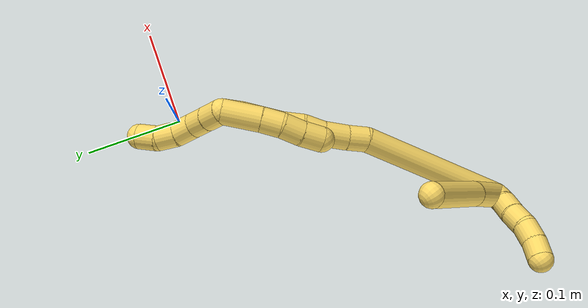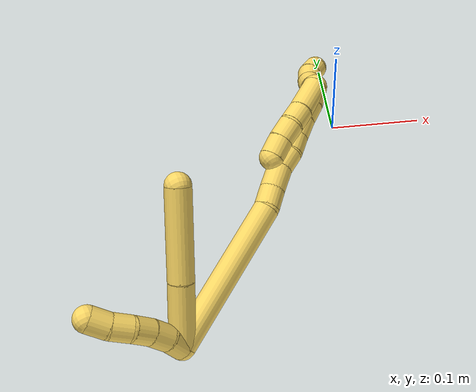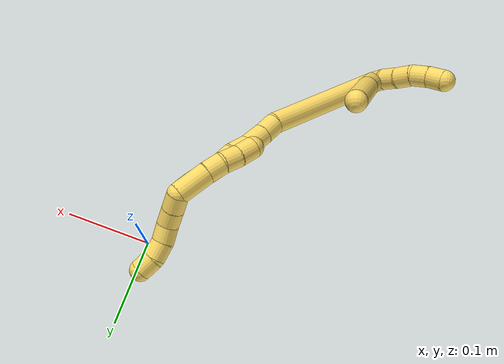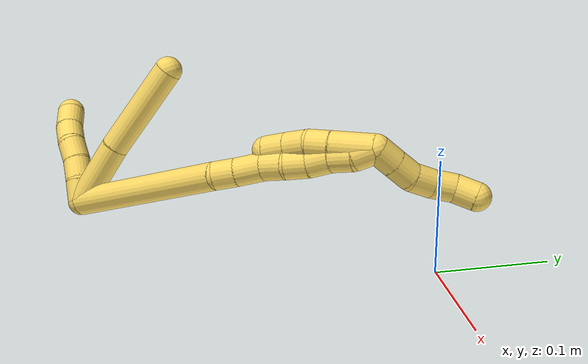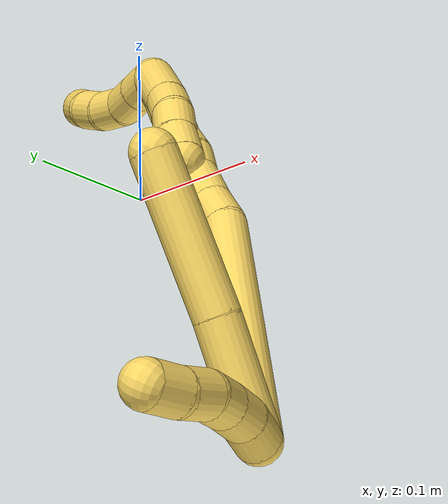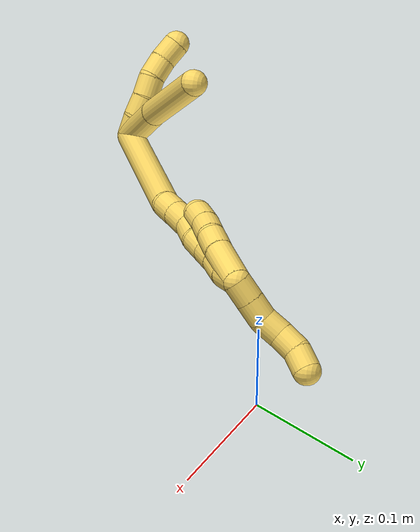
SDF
<sdf version="1.7">
 <world name="default">
  <model name="5">
   <static>0</static>
   <link name="5">
    <collision name="collision-cylinder-e_1_2_8">
     <pose>-0.014634 0.019618 -0.019841 -2.36186 -0.483025 1.08006</pose>
     <geometry><cylinder><radius>0.0125</radius><length>0.063014</length></cylinder></geometry>
     <surface>
      <friction><ode><mu>1.16</mu><mu2>1.16</mu2><slip1>0</slip1><slip2>0</slip2></ode></friction>
      <contact><ode><kp>1e+06</kp><kd>1</kd><max_vel>0</max_vel><min_depth>0.001</min_depth></ode></contact>
     </surface>
    </collision>
    <visual name="visual-cylinder-e_1_2_8">
     <pose>-0.014634 0.019618 -0.019841 -2.36186 -0.483025 1.08006</pose>
     <geometry><cylinder><radius>0.0125</radius><length>0.063014</length></cylinder></geometry>
     <material><ambient>1 0.858824 0.4 1</ambient></material>
    </visual>
    <collision name="collision-cylinder-e_2_8_6">
     <pose>-0.047781 0.065397 -0.069085 -2.41445 -0.439696 1.06206</pose>
     <geometry><cylinder><radius>0.0125</radius><length>0.086986</length></cylinder></geometry>
     <surface>
      <friction><ode><mu>1.16</mu><mu2>1.16</mu2><slip1>0</slip1><slip2>0</slip2></ode></friction>
      <contact><ode><kp>1e+06</kp><kd>1</kd><max_vel>0</max_vel><min_depth>0.001</min_depth></ode></contact>
     </surface>
    </collision>
    <visual name="visual-cylinder-e_2_8_6">
     <pose>-0.047781 0.065397 -0.069085 -2.41445 -0.439696 1.06206</pose>
     <geometry><cylinder><radius>0.0125</radius><length>0.086986</length></cylinder></geometry>
     <material><ambient>1 0.858824 0.4 1</ambient></material>
    </visual>
    <collision name="collision-cylinder-e_1_2_9">
     <pose>-0.009566 0.000332 -0.002895 -3.0275 -1.27508 2.98769</pose>
     <geometry><cylinder><radius>0.0125</radius><length>0.02</length></cylinder></geometry>
     <surface>
      <friction><ode><mu>1.16</mu><mu2>1.16</mu2><slip1>0</slip1><slip2>0</slip2></ode></friction>
      <contact><ode><kp>1e+06</kp><kd>1</kd><max_vel>0</max_vel><min_depth>0.001</min_depth></ode></contact>
     </surface>
    </collision>
    <visual name="visual-cylinder-e_1_2_9">
     <pose>-0.009566 0.000332 -0.002895 -3.0275 -1.27508 2.98769</pose>
     <geometry><cylinder><radius>0.0125</radius><length>0.02</length></cylinder></geometry>
     <material><ambient>1 0.858824 0.4 1</ambient></material>
    </visual>
    <collision name="collision-cylinder-e_2_9_10">
     <pose>-0.028502 -0.001118 -0.008796 2.60651 -1.2139 -2.38963</pose>
     <geometry><cylinder><radius>0.0125</radius><length>0.02</length></cylinder></geometry>
     <surface>
      <friction><ode><mu>1.16</mu><mu2>1.16</mu2><slip1>0</slip1><slip2>0</slip2></ode></friction>
      <contact><ode><kp>1e+06</kp><kd>1</kd><max_vel>0</max_vel><min_depth>0.001</min_depth></ode></contact>
     </surface>
    </collision>
    <visual name="visual-cylinder-e_2_9_10">
     <pose>-0.028502 -0.001118 -0.008796 2.60651 -1.2139 -2.38963</pose>
     <geometry><cylinder><radius>0.0125</radius><length>0.02</length></cylinder></geometry>
     <material><ambient>1 0.858824 0.4 1</ambient></material>
    </visual>
    <collision name="collision-cylinder-e_3_10_11">
     <pose>-0.047338 -0.005549 -0.013634 2.17604 -1.24281 -1.87781</pose>
     <geometry><cylinder><radius>0.0125</radius><length>0.02</length></cylinder></geometry>
     <surface>
      <friction><ode><mu>1.16</mu><mu2>1.16</mu2><slip1>0</slip1><slip2>0</slip2></ode></friction>
      <contact><ode><kp>1e+06</kp><kd>1</kd><max_vel>0</max_vel><min_depth>0.001</min_depth></ode></contact>
     </surface>
    </collision>
    <visual name="visual-cylinder-e_3_10_11">
     <pose>-0.047338 -0.005549 -0.013634 2.17604 -1.24281 -1.87781</pose>
     <geometry><cylinder><radius>0.0125</radius><length>0.02</length></cylinder></geometry>
     <material><ambient>1 0.858824 0.4 1</ambient></material>
    </visual>
    <collision name="collision-cylinder-e_4_11_12">
     <pose>-0.064964 -0.013058 -0.018601 2.14353 -0.954196 -1.51786</pose>
     <geometry><cylinder><radius>0.0125</radius><length>0.02</length></cylinder></geometry>
     <surface>
      <friction><ode><mu>1.16</mu><mu2>1.16</mu2><slip1>0</slip1><slip2>0</slip2></ode></friction>
      <contact><ode><kp>1e+06</kp><kd>1</kd><max_vel>0</max_vel><min_depth>0.001</min_depth></ode></contact>
     </surface>
    </collision>
    <visual name="visual-cylinder-e_4_11_12">
     <pose>-0.064964 -0.013058 -0.018601 2.14353 -0.954196 -1.51786</pose>
     <geometry><cylinder><radius>0.0125</radius><length>0.02</length></cylinder></geometry>
     <material><ambient>1 0.858824 0.4 1</ambient></material>
    </visual>
    <collision name="collision-cylinder-e_5_12_5">
     <pose>-0.080955 -0.021846 -0.026553 2.45761 -0.899873 -1.87126</pose>
     <geometry><cylinder><radius>0.0125</radius><length>0.02</length></cylinder></geometry>
     <surface>
      <friction><ode><mu>1.16</mu><mu2>1.16</mu2><slip1>0</slip1><slip2>0</slip2></ode></friction>
      <contact><ode><kp>1e+06</kp><kd>1</kd><max_vel>0</max_vel><min_depth>0.001</min_depth></ode></contact>
     </surface>
    </collision>
    <visual name="visual-cylinder-e_5_12_5">
     <pose>-0.080955 -0.021846 -0.026553 2.45761 -0.899873 -1.87126</pose>
     <geometry><cylinder><radius>0.0125</radius><length>0.02</length></cylinder></geometry>
     <material><ambient>1 0.858824 0.4 1</ambient></material>
    </visual>
    <collision name="collision-cylinder-e_1_2_13">
     <pose>0.020545 0.05869 -0.044205 -2.21634 0.27265 -0.536833</pose>
     <geometry><cylinder><radius>0.0125</radius><length>0.152588</length></cylinder></geometry>
     <surface>
      <friction><ode><mu>1.16</mu><mu2>1.16</mu2><slip1>0</slip1><slip2>0</slip2></ode></friction>
      <contact><ode><kp>1e+06</kp><kd>1</kd><max_vel>0</max_vel><min_depth>0.001</min_depth></ode></contact>
     </surface>
    </collision>
    <visual name="visual-cylinder-e_1_2_13">
     <pose>0.020545 0.05869 -0.044205 -2.21634 0.27265 -0.536833</pose>
     <geometry><cylinder><radius>0.0125</radius><length>0.152588</length></cylinder></geometry>
     <material><ambient>1 0.858824 0.4 1</ambient></material>
    </visual>
    <collision name="collision-cylinder-e_2_13_14">
     <pose>0.04403 0.1231 -0.096445 -2.52298 0.289781 -0.856667</pose>
     <geometry><cylinder><radius>0.0125</radius><length>0.020582</length></cylinder></geometry>
     <surface>
      <friction><ode><mu>1.16</mu><mu2>1.16</mu2><slip1>0</slip1><slip2>0</slip2></ode></friction>
      <contact><ode><kp>1e+06</kp><kd>1</kd><max_vel>0</max_vel><min_depth>0.001</min_depth></ode></contact>
     </surface>
    </collision>
    <visual name="visual-cylinder-e_2_13_14">
     <pose>0.04403 0.1231 -0.096445 -2.52298 0.289781 -0.856667</pose>
     <geometry><cylinder><radius>0.0125</radius><length>0.020582</length></cylinder></geometry>
     <material><ambient>1 0.858824 0.4 1</ambient></material>
    </visual>
    <collision name="collision-cylinder-e_3_14_15">
     <pose>0.050081 0.136515 -0.113806 -2.45161 0.251776 -0.677217</pose>
     <geometry><cylinder><radius>0.0125</radius><length>0.024971</length></cylinder></geometry>
     <surface>
      <friction><ode><mu>1.16</mu><mu2>1.16</mu2><slip1>0</slip1><slip2>0</slip2></ode></friction>
      <contact><ode><kp>1e+06</kp><kd>1</kd><max_vel>0</max_vel><min_depth>0.001</min_depth></ode></contact>
     </surface>
    </collision>
    <visual name="visual-cylinder-e_3_14_15">
     <pose>0.050081 0.136515 -0.113806 -2.45161 0.251776 -0.677217</pose>
     <geometry><cylinder><radius>0.0125</radius><length>0.024971</length></cylinder></geometry>
     <material><ambient>1 0.858824 0.4 1</ambient></material>
    </visual>
    <collision name="collision-cylinder-e_4_15_16">
     <pose>0.057174 0.151487 -0.129343 -2.27749 0.394466 -0.817881</pose>
     <geometry><cylinder><radius>0.0125</radius><length>0.020722</length></cylinder></geometry>
     <surface>
      <friction><ode><mu>1.16</mu><mu2>1.16</mu2><slip1>0</slip1><slip2>0</slip2></ode></friction>
      <contact><ode><kp>1e+06</kp><kd>1</kd><max_vel>0</max_vel><min_depth>0.001</min_depth></ode></contact>
     </surface>
    </collision>
    <visual name="visual-cylinder-e_4_15_16">
     <pose>0.057174 0.151487 -0.129343 -2.27749 0.394466 -0.817881</pose>
     <geometry><cylinder><radius>0.0125</radius><length>0.020722</length></cylinder></geometry>
     <material><ambient>1 0.858824 0.4 1</ambient></material>
    </visual>
    <collision name="collision-cylinder-e_5_16_17">
     <pose>0.064828 0.164261 -0.143319 -2.52536 0.368356 -1.05915</pose>
     <geometry><cylinder><radius>0.0125</radius><length>0.020399</length></cylinder></geometry>
     <surface>
      <friction><ode><mu>1.16</mu><mu2>1.16</mu2><slip1>0</slip1><slip2>0</slip2></ode></friction>
      <contact><ode><kp>1e+06</kp><kd>1</kd><max_vel>0</max_vel><min_depth>0.001</min_depth></ode></contact>
     </surface>
    </collision>
    <visual name="visual-cylinder-e_5_16_17">
     <pose>0.064828 0.164261 -0.143319 -2.52536 0.368356 -1.05915</pose>
     <geometry><cylinder><radius>0.0125</radius><length>0.020399</length></cylinder></geometry>
     <material><ambient>1 0.858824 0.4 1</ambient></material>
    </visual>
    <collision name="collision-cylinder-e_6_17_18">
     <pose>0.070818 0.176729 -0.158243 -2.3697 0.227922 -0.549147</pose>
     <geometry><cylinder><radius>0.0125</radius><length>0.020511</length></cylinder></geometry>
     <surface>
      <friction><ode><mu>1.16</mu><mu2>1.16</mu2><slip1>0</slip1><slip2>0</slip2></ode></friction>
      <contact><ode><kp>1e+06</kp><kd>1</kd><max_vel>0</max_vel><min_depth>0.001</min_depth></ode></contact>
     </surface>
    </collision>
    <visual name="visual-cylinder-e_6_17_18">
     <pose>0.070818 0.176729 -0.158243 -2.3697 0.227922 -0.549147</pose>
     <geometry><cylinder><radius>0.0125</radius><length>0.020511</length></cylinder></geometry>
     <material><ambient>1 0.858824 0.4 1</ambient></material>
    </visual>
    <collision name="collision-cylinder-e_7_18_19">
     <pose>0.077093 0.190045 -0.172177 -2.38877 0.402956 -0.953916</pose>
     <geometry><cylinder><radius>0.0125</radius><length>0.020185</length></cylinder></geometry>
     <surface>
      <friction><ode><mu>1.16</mu><mu2>1.16</mu2><slip1>0</slip1><slip2>0</slip2></ode></friction>
      <contact><ode><kp>1e+06</kp><kd>1</kd><max_vel>0</max_vel><min_depth>0.001</min_depth></ode></contact>
     </surface>
    </collision>
    <visual name="visual-cylinder-e_7_18_19">
     <pose>0.077093 0.190045 -0.172177 -2.38877 0.402956 -0.953916</pose>
     <geometry><cylinder><radius>0.0125</radius><length>0.020185</length></cylinder></geometry>
     <material><ambient>1 0.858824 0.4 1</ambient></material>
    </visual>
    <collision name="collision-cylinder-e_8_19_1">
     <pose>0.082156 0.202708 -0.186653 -2.45469 0.110487 -0.306829</pose>
     <geometry><cylinder><radius>0.0125</radius><length>0.020041</length></cylinder></geometry>
     <surface>
      <friction><ode><mu>1.16</mu><mu2>1.16</mu2><slip1>0</slip1><slip2>0</slip2></ode></friction>
      <contact><ode><kp>1e+06</kp><kd>1</kd><max_vel>0</max_vel><min_depth>0.001</min_depth></ode></contact>
     </surface>
    </collision>
    <visual name="visual-cylinder-e_8_19_1">
     <pose>0.082156 0.202708 -0.186653 -2.45469 0.110487 -0.306829</pose>
     <geometry><cylinder><radius>0.0125</radius><length>0.020041</length></cylinder></geometry>
     <material><ambient>1 0.858824 0.4 1</ambient></material>
    </visual>
    <collision name="collision-cylinder-e_1_1_20">
     <pose>0.091212 0.206632 -0.199928 2.73627 0.919168 2.35456</pose>
     <geometry><cylinder><radius>0.0125</radius><length>0.02</length></cylinder></geometry>
     <surface>
      <friction><ode><mu>1.16</mu><mu2>1.16</mu2><slip1>0</slip1><slip2>0</slip2></ode></friction>
      <contact><ode><kp>1e+06</kp><kd>1</kd><max_vel>0</max_vel><min_depth>0.001</min_depth></ode></contact>
     </surface>
    </collision>
    <visual name="visual-cylinder-e_1_1_20">
     <pose>0.091212 0.206632 -0.199928 2.73627 0.919168 2.35456</pose>
     <geometry><cylinder><radius>0.0125</radius><length>0.02</length></cylinder></geometry>
     <material><ambient>1 0.858824 0.4 1</ambient></material>
    </visual>
    <collision name="collision-cylinder-e_2_20_21">
     <pose>0.107115 0.201963 -0.211121 2.75652 0.919305 2.39124</pose>
     <geometry><cylinder><radius>0.0125</radius><length>0.02</length></cylinder></geometry>
     <surface>
      <friction><ode><mu>1.16</mu><mu2>1.16</mu2><slip1>0</slip1><slip2>0</slip2></ode></friction>
      <contact><ode><kp>1e+06</kp><kd>1</kd><max_vel>0</max_vel><min_depth>0.001</min_depth></ode></contact>
     </surface>
    </collision>
    <visual name="visual-cylinder-e_2_20_21">
     <pose>0.107115 0.201963 -0.211121 2.75652 0.919305 2.39124</pose>
     <geometry><cylinder><radius>0.0125</radius><length>0.02</length></cylinder></geometry>
     <material><ambient>1 0.858824 0.4 1</ambient></material>
    </visual>
    <collision name="collision-cylinder-e_3_21_22">
     <pose>0.120949 0.198302 -0.224707 2.96963 0.628976 2.62353</pose>
     <geometry><cylinder><radius>0.0125</radius><length>0.02</length></cylinder></geometry>
     <surface>
      <friction><ode><mu>1.16</mu><mu2>1.16</mu2><slip1>0</slip1><slip2>0</slip2></ode></friction>
      <contact><ode><kp>1e+06</kp><kd>1</kd><max_vel>0</max_vel><min_depth>0.001</min_depth></ode></contact>
     </surface>
    </collision>
    <visual name="visual-cylinder-e_3_21_22">
     <pose>0.120949 0.198302 -0.224707 2.96963 0.628976 2.62353</pose>
     <geometry><cylinder><radius>0.0125</radius><length>0.02</length></cylinder></geometry>
     <material><ambient>1 0.858824 0.4 1</ambient></material>
    </visual>
    <collision name="collision-cylinder-e_4_22_23">
     <pose>0.13249 0.198092 -0.240836 -2.9988 0.601326 -2.6882</pose>
     <geometry><cylinder><radius>0.0125</radius><length>0.02</length></cylinder></geometry>
     <surface>
      <friction><ode><mu>1.16</mu><mu2>1.16</mu2><slip1>0</slip1><slip2>0</slip2></ode></friction>
      <contact><ode><kp>1e+06</kp><kd>1</kd><max_vel>0</max_vel><min_depth>0.001</min_depth></ode></contact>
     </surface>
    </collision>
    <visual name="visual-cylinder-e_4_22_23">
     <pose>0.13249 0.198092 -0.240836 -2.9988 0.601326 -2.6882</pose>
     <geometry><cylinder><radius>0.0125</radius><length>0.02</length></cylinder></geometry>
     <material><ambient>1 0.858824 0.4 1</ambient></material>
    </visual>
    <collision name="collision-cylinder-e_5_23_4">
     <pose>0.145399 0.202575 -0.255036 -2.64015 0.811279 -2.06612</pose>
     <geometry><cylinder><radius>0.0125</radius><length>0.02</length></cylinder></geometry>
     <surface>
      <friction><ode><mu>1.16</mu><mu2>1.16</mu2><slip1>0</slip1><slip2>0</slip2></ode></friction>
      <contact><ode><kp>1e+06</kp><kd>1</kd><max_vel>0</max_vel><min_depth>0.001</min_depth></ode></contact>
     </surface>
    </collision>
    <visual name="visual-cylinder-e_5_23_4">
     <pose>0.145399 0.202575 -0.255036 -2.64015 0.811279 -2.06612</pose>
     <geometry><cylinder><radius>0.0125</radius><length>0.02</length></cylinder></geometry>
     <material><ambient>1 0.858824 0.4 1</ambient></material>
    </visual>
    <collision name="collision-cylinder-e_1_1_24">
     <pose>0.073583 0.198358 -0.18151 0.693015 -0.525347 -0.19357</pose>
     <geometry><cylinder><radius>0.0125</radius><length>0.038595</length></cylinder></geometry>
     <surface>
      <friction><ode><mu>1.16</mu><mu2>1.16</mu2><slip1>0</slip1><slip2>0</slip2></ode></friction>
      <contact><ode><kp>1e+06</kp><kd>1</kd><max_vel>0</max_vel><min_depth>0.001</min_depth></ode></contact>
     </surface>
    </collision>
    <visual name="visual-cylinder-e_1_1_24">
     <pose>0.073583 0.198358 -0.18151 0.693015 -0.525347 -0.19357</pose>
     <geometry><cylinder><radius>0.0125</radius><length>0.038595</length></cylinder></geometry>
     <material><ambient>1 0.858824 0.4 1</ambient></material>
    </visual>
    <collision name="collision-cylinder-e_2_24_25">
     <pose>0.058885 0.181553 -0.162415 0.776344 -0.520302 -0.216842</pose>
     <geometry><cylinder><radius>0.0125</radius><length>0.020196</length></cylinder></geometry>
     <surface>
      <friction><ode><mu>1.16</mu><mu2>1.16</mu2><slip1>0</slip1><slip2>0</slip2></ode></friction>
      <contact><ode><kp>1e+06</kp><kd>1</kd><max_vel>0</max_vel><min_depth>0.001</min_depth></ode></contact>
     </surface>
    </collision>
    <visual name="visual-cylinder-e_2_24_25">
     <pose>0.058885 0.181553 -0.162415 0.776344 -0.520302 -0.216842</pose>
     <geometry><cylinder><radius>0.0125</radius><length>0.020196</length></cylinder></geometry>
     <material><ambient>1 0.858824 0.4 1</ambient></material>
    </visual>
    <collision name="collision-cylinder-e_3_25_26">
     <pose>0.050601 0.16768 -0.150296 0.921805 -0.324322 -0.162121</pose>
     <geometry><cylinder><radius>0.0125</radius><length>0.020483</length></cylinder></geometry>
     <surface>
      <friction><ode><mu>1.16</mu><mu2>1.16</mu2><slip1>0</slip1><slip2>0</slip2></ode></friction>
      <contact><ode><kp>1e+06</kp><kd>1</kd><max_vel>0</max_vel><min_depth>0.001</min_depth></ode></contact>
     </surface>
    </collision>
    <visual name="visual-cylinder-e_3_25_26">
     <pose>0.050601 0.16768 -0.150296 0.921805 -0.324322 -0.162121</pose>
     <geometry><cylinder><radius>0.0125</radius><length>0.020483</length></cylinder></geometry>
     <material><ambient>1 0.858824 0.4 1</ambient></material>
    </visual>
    <collision name="collision-cylinder-e_4_26_3">
     <pose>0.044351 0.152738 -0.137609 0.813037 -0.292357 -0.126594</pose>
     <geometry><cylinder><radius>0.0125</radius><length>0.020726</length></cylinder></geometry>
     <surface>
      <friction><ode><mu>1.16</mu><mu2>1.16</mu2><slip1>0</slip1><slip2>0</slip2></ode></friction>
      <contact><ode><kp>1e+06</kp><kd>1</kd><max_vel>0</max_vel><min_depth>0.001</min_depth></ode></contact>
     </surface>
    </collision>
    <visual name="visual-cylinder-e_4_26_3">
     <pose>0.044351 0.152738 -0.137609 0.813037 -0.292357 -0.126594</pose>
     <geometry><cylinder><radius>0.0125</radius><length>0.020726</length></cylinder></geometry>
     <material><ambient>1 0.858824 0.4 1</ambient></material>
    </visual>
    <collision name="collision-sphere-3">
     <pose>0.041364 0.14553 -0.130789 0 -0 0</pose>
     <geometry><sphere><radius>0.0125</radius></sphere></geometry>
     <surface>
      <friction><ode><mu>1.16</mu><mu2>1.16</mu2><slip1>0</slip1><slip2>0</slip2></ode></friction>
      <contact><ode><kp>1e+06</kp><kd>1</kd><max_vel>0</max_vel><min_depth>0.001</min_depth></ode></contact>
     </surface>
    </collision>
    <visual name="visual-sphere-3">
     <pose>0.041364 0.14553 -0.130789 0 -0 0</pose>
     <geometry><sphere><radius>0.0125</radius></sphere></geometry>
     <material><ambient>1 0.858824 0.4 1</ambient></material>
    </visual>
    <collision name="collision-sphere-26">
     <pose>0.047337 0.159946 -0.144429 0 -0 0</pose>
     <geometry><sphere><radius>0.0125</radius></sphere></geometry>
     <surface>
      <friction><ode><mu>1.16</mu><mu2>1.16</mu2><slip1>0</slip1><slip2>0</slip2></ode></friction>
      <contact><ode><kp>1e+06</kp><kd>1</kd><max_vel>0</max_vel><min_depth>0.001</min_depth></ode></contact>
     </surface>
    </collision>
    <visual name="visual-sphere-26">
     <pose>0.047337 0.159946 -0.144429 0 -0 0</pose>
     <geometry><sphere><radius>0.0125</radius></sphere></geometry>
     <material><ambient>1 0.858824 0.4 1</ambient></material>
    </visual>
    <collision name="collision-sphere-25">
     <pose>0.053864 0.175414 -0.156163 0 -0 0</pose>
     <geometry><sphere><radius>0.0125</radius></sphere></geometry>
     <surface>
      <friction><ode><mu>1.16</mu><mu2>1.16</mu2><slip1>0</slip1><slip2>0</slip2></ode></friction>
      <contact><ode><kp>1e+06</kp><kd>1</kd><max_vel>0</max_vel><min_depth>0.001</min_depth></ode></contact>
     </surface>
    </collision>
    <visual name="visual-sphere-25">
     <pose>0.053864 0.175414 -0.156163 0 -0 0</pose>
     <geometry><sphere><radius>0.0125</radius></sphere></geometry>
     <material><ambient>1 0.858824 0.4 1</ambient></material>
    </visual>
    <collision name="collision-sphere-24">
     <pose>0.063905 0.187692 -0.168666 0 -0 0</pose>
     <geometry><sphere><radius>0.0125</radius></sphere></geometry>
     <surface>
      <friction><ode><mu>1.16</mu><mu2>1.16</mu2><slip1>0</slip1><slip2>0</slip2></ode></friction>
      <contact><ode><kp>1e+06</kp><kd>1</kd><max_vel>0</max_vel><min_depth>0.001</min_depth></ode></contact>
     </surface>
    </collision>
    <visual name="visual-sphere-24">
     <pose>0.063905 0.187692 -0.168666 0 -0 0</pose>
     <geometry><sphere><radius>0.0125</radius></sphere></geometry>
     <material><ambient>1 0.858824 0.4 1</ambient></material>
    </visual>
    <collision name="collision-sphere-4">
     <pose>0.152651 0.205885 -0.261074 0 -0 0</pose>
     <geometry><sphere><radius>0.0125</radius></sphere></geometry>
     <surface>
      <friction><ode><mu>1.16</mu><mu2>1.16</mu2><slip1>0</slip1><slip2>0</slip2></ode></friction>
      <contact><ode><kp>1e+06</kp><kd>1</kd><max_vel>0</max_vel><min_depth>0.001</min_depth></ode></contact>
     </surface>
    </collision>
    <visual name="visual-sphere-4">
     <pose>0.152651 0.205885 -0.261074 0 -0 0</pose>
     <geometry><sphere><radius>0.0125</radius></sphere></geometry>
     <material><ambient>1 0.858824 0.4 1</ambient></material>
    </visual>
    <collision name="collision-sphere-23">
     <pose>0.138147 0.199265 -0.248998 0 -0 0</pose>
     <geometry><sphere><radius>0.0125</radius></sphere></geometry>
     <surface>
      <friction><ode><mu>1.16</mu><mu2>1.16</mu2><slip1>0</slip1><slip2>0</slip2></ode></friction>
      <contact><ode><kp>1e+06</kp><kd>1</kd><max_vel>0</max_vel><min_depth>0.001</min_depth></ode></contact>
     </surface>
    </collision>
    <visual name="visual-sphere-23">
     <pose>0.138147 0.199265 -0.248998 0 -0 0</pose>
     <geometry><sphere><radius>0.0125</radius></sphere></geometry>
     <material><ambient>1 0.858824 0.4 1</ambient></material>
    </visual>
    <collision name="collision-sphere-22">
     <pose>0.126833 0.196918 -0.232674 0 -0 0</pose>
     <geometry><sphere><radius>0.0125</radius></sphere></geometry>
     <surface>
      <friction><ode><mu>1.16</mu><mu2>1.16</mu2><slip1>0</slip1><slip2>0</slip2></ode></friction>
      <contact><ode><kp>1e+06</kp><kd>1</kd><max_vel>0</max_vel><min_depth>0.001</min_depth></ode></contact>
     </surface>
    </collision>
    <visual name="visual-sphere-22">
     <pose>0.126833 0.196918 -0.232674 0 -0 0</pose>
     <geometry><sphere><radius>0.0125</radius></sphere></geometry>
     <material><ambient>1 0.858824 0.4 1</ambient></material>
    </visual>
    <collision name="collision-sphere-21">
     <pose>0.115066 0.199686 -0.21674 0 -0 0</pose>
     <geometry><sphere><radius>0.0125</radius></sphere></geometry>
     <surface>
      <friction><ode><mu>1.16</mu><mu2>1.16</mu2><slip1>0</slip1><slip2>0</slip2></ode></friction>
      <contact><ode><kp>1e+06</kp><kd>1</kd><max_vel>0</max_vel><min_depth>0.001</min_depth></ode></contact>
     </surface>
    </collision>
    <visual name="visual-sphere-21">
     <pose>0.115066 0.199686 -0.21674 0 -0 0</pose>
     <geometry><sphere><radius>0.0125</radius></sphere></geometry>
     <material><ambient>1 0.858824 0.4 1</ambient></material>
    </visual>
    <collision name="collision-sphere-20">
     <pose>0.099163 0.204241 -0.205501 0 -0 0</pose>
     <geometry><sphere><radius>0.0125</radius></sphere></geometry>
     <surface>
      <friction><ode><mu>1.16</mu><mu2>1.16</mu2><slip1>0</slip1><slip2>0</slip2></ode></friction>
      <contact><ode><kp>1e+06</kp><kd>1</kd><max_vel>0</max_vel><min_depth>0.001</min_depth></ode></contact>
     </surface>
    </collision>
    <visual name="visual-sphere-20">
     <pose>0.099163 0.204241 -0.205501 0 -0 0</pose>
     <geometry><sphere><radius>0.0125</radius></sphere></geometry>
     <material><ambient>1 0.858824 0.4 1</ambient></material>
    </visual>
    <collision name="collision-sphere-11">
     <pose>-0.056805 -0.008198 -0.015467 0 -0 0</pose>
     <geometry><sphere><radius>0.0125</radius></sphere></geometry>
     <surface>
      <friction><ode><mu>1.16</mu><mu2>1.16</mu2><slip1>0</slip1><slip2>0</slip2></ode></friction>
      <contact><ode><kp>1e+06</kp><kd>1</kd><max_vel>0</max_vel><min_depth>0.001</min_depth></ode></contact>
     </surface>
    </collision>
    <visual name="visual-sphere-11">
     <pose>-0.056805 -0.008198 -0.015467 0 -0 0</pose>
     <geometry><sphere><radius>0.0125</radius></sphere></geometry>
     <material><ambient>1 0.858824 0.4 1</ambient></material>
    </visual>
    <collision name="collision-sphere-10">
     <pose>-0.037872 -0.002899 -0.011801 0 -0 0</pose>
     <geometry><sphere><radius>0.0125</radius></sphere></geometry>
     <surface>
      <friction><ode><mu>1.16</mu><mu2>1.16</mu2><slip1>0</slip1><slip2>0</slip2></ode></friction>
      <contact><ode><kp>1e+06</kp><kd>1</kd><max_vel>0</max_vel><min_depth>0.001</min_depth></ode></contact>
     </surface>
    </collision>
    <visual name="visual-sphere-10">
     <pose>-0.037872 -0.002899 -0.011801 0 -0 0</pose>
     <geometry><sphere><radius>0.0125</radius></sphere></geometry>
     <material><ambient>1 0.858824 0.4 1</ambient></material>
    </visual>
    <collision name="collision-sphere-6">
     <pose>-0.066294 0.091559 -0.098487 0 -0 0</pose>
     <geometry><sphere><radius>0.0125</radius></sphere></geometry>
     <surface>
      <friction><ode><mu>1.16</mu><mu2>1.16</mu2><slip1>0</slip1><slip2>0</slip2></ode></friction>
      <contact><ode><kp>1e+06</kp><kd>1</kd><max_vel>0</max_vel><min_depth>0.001</min_depth></ode></contact>
     </surface>
    </collision>
    <visual name="visual-sphere-6">
     <pose>-0.066294 0.091559 -0.098487 0 -0 0</pose>
     <geometry><sphere><radius>0.0125</radius></sphere></geometry>
     <material><ambient>1 0.858824 0.4 1</ambient></material>
    </visual>
    <collision name="collision-sphere-9">
     <pose>-0.019132 0.000664 -0.005791 0 -0 0</pose>
     <geometry><sphere><radius>0.0125</radius></sphere></geometry>
     <surface>
      <friction><ode><mu>1.16</mu><mu2>1.16</mu2><slip1>0</slip1><slip2>0</slip2></ode></friction>
      <contact><ode><kp>1e+06</kp><kd>1</kd><max_vel>0</max_vel><min_depth>0.001</min_depth></ode></contact>
     </surface>
    </collision>
    <visual name="visual-sphere-9">
     <pose>-0.019132 0.000664 -0.005791 0 -0 0</pose>
     <geometry><sphere><radius>0.0125</radius></sphere></geometry>
     <material><ambient>1 0.858824 0.4 1</ambient></material>
    </visual>
    <collision name="collision-sphere-2">
     <geometry><sphere><radius>0.0125</radius></sphere></geometry>
     <surface>
      <friction><ode><mu>1.16</mu><mu2>1.16</mu2><slip1>0</slip1><slip2>0</slip2></ode></friction>
      <contact><ode><kp>1e+06</kp><kd>1</kd><max_vel>0</max_vel><min_depth>0.001</min_depth></ode></contact>
     </surface>
    </collision>
    <visual name="visual-sphere-2">
     <geometry><sphere><radius>0.0125</radius></sphere></geometry>
     <material><ambient>1 0.858824 0.4 1</ambient></material>
    </visual>
    <collision name="collision-sphere-19">
     <pose>0.081051 0.196392 -0.178953 0 -0 0</pose>
     <geometry><sphere><radius>0.0125</radius></sphere></geometry>
     <surface>
      <friction><ode><mu>1.16</mu><mu2>1.16</mu2><slip1>0</slip1><slip2>0</slip2></ode></friction>
      <contact><ode><kp>1e+06</kp><kd>1</kd><max_vel>0</max_vel><min_depth>0.001</min_depth></ode></contact>
     </surface>
    </collision>
    <visual name="visual-sphere-19">
     <pose>0.081051 0.196392 -0.178953 0 -0 0</pose>
     <geometry><sphere><radius>0.0125</radius></sphere></geometry>
     <material><ambient>1 0.858824 0.4 1</ambient></material>
    </visual>
    <collision name="collision-sphere-8">
     <pose>-0.029267 0.039235 -0.039683 0 -0 0</pose>
     <geometry><sphere><radius>0.0125</radius></sphere></geometry>
     <surface>
      <friction><ode><mu>1.16</mu><mu2>1.16</mu2><slip1>0</slip1><slip2>0</slip2></ode></friction>
      <contact><ode><kp>1e+06</kp><kd>1</kd><max_vel>0</max_vel><min_depth>0.001</min_depth></ode></contact>
     </surface>
    </collision>
    <visual name="visual-sphere-8">
     <pose>-0.029267 0.039235 -0.039683 0 -0 0</pose>
     <geometry><sphere><radius>0.0125</radius></sphere></geometry>
     <material><ambient>1 0.858824 0.4 1</ambient></material>
    </visual>
    <collision name="collision-sphere-12">
     <pose>-0.073122 -0.017917 -0.021735 0 -0 0</pose>
     <geometry><sphere><radius>0.0125</radius></sphere></geometry>
     <surface>
      <friction><ode><mu>1.16</mu><mu2>1.16</mu2><slip1>0</slip1><slip2>0</slip2></ode></friction>
      <contact><ode><kp>1e+06</kp><kd>1</kd><max_vel>0</max_vel><min_depth>0.001</min_depth></ode></contact>
     </surface>
    </collision>
    <visual name="visual-sphere-12">
     <pose>-0.073122 -0.017917 -0.021735 0 -0 0</pose>
     <geometry><sphere><radius>0.0125</radius></sphere></geometry>
     <material><ambient>1 0.858824 0.4 1</ambient></material>
    </visual>
    <collision name="collision-sphere-5">
     <pose>-0.088787 -0.025774 -0.031372 0 -0 0</pose>
     <geometry><sphere><radius>0.0125</radius></sphere></geometry>
     <surface>
      <friction><ode><mu>1.16</mu><mu2>1.16</mu2><slip1>0</slip1><slip2>0</slip2></ode></friction>
      <contact><ode><kp>1e+06</kp><kd>1</kd><max_vel>0</max_vel><min_depth>0.001</min_depth></ode></contact>
     </surface>
    </collision>
    <visual name="visual-sphere-5">
     <pose>-0.088787 -0.025774 -0.031372 0 -0 0</pose>
     <geometry><sphere><radius>0.0125</radius></sphere></geometry>
     <material><ambient>1 0.858824 0.4 1</ambient></material>
    </visual>
    <collision name="collision-sphere-13">
     <pose>0.04109 0.117381 -0.088411 0 -0 0</pose>
     <geometry><sphere><radius>0.0125</radius></sphere></geometry>
     <surface>
      <friction><ode><mu>1.16</mu><mu2>1.16</mu2><slip1>0</slip1><slip2>0</slip2></ode></friction>
      <contact><ode><kp>1e+06</kp><kd>1</kd><max_vel>0</max_vel><min_depth>0.001</min_depth></ode></contact>
     </surface>
    </collision>
    <visual name="visual-sphere-13">
     <pose>0.04109 0.117381 -0.088411 0 -0 0</pose>
     <geometry><sphere><radius>0.0125</radius></sphere></geometry>
     <material><ambient>1 0.858824 0.4 1</ambient></material>
    </visual>
    <collision name="collision-sphere-14">
     <pose>0.046971 0.128819 -0.10448 0 -0 0</pose>
     <geometry><sphere><radius>0.0125</radius></sphere></geometry>
     <surface>
      <friction><ode><mu>1.16</mu><mu2>1.16</mu2><slip1>0</slip1><slip2>0</slip2></ode></friction>
      <contact><ode><kp>1e+06</kp><kd>1</kd><max_vel>0</max_vel><min_depth>0.001</min_depth></ode></contact>
     </surface>
    </collision>
    <visual name="visual-sphere-14">
     <pose>0.046971 0.128819 -0.10448 0 -0 0</pose>
     <geometry><sphere><radius>0.0125</radius></sphere></geometry>
     <material><ambient>1 0.858824 0.4 1</ambient></material>
    </visual>
    <collision name="collision-sphere-15">
     <pose>0.053192 0.144212 -0.123132 0 -0 0</pose>
     <geometry><sphere><radius>0.0125</radius></sphere></geometry>
     <surface>
      <friction><ode><mu>1.16</mu><mu2>1.16</mu2><slip1>0</slip1><slip2>0</slip2></ode></friction>
      <contact><ode><kp>1e+06</kp><kd>1</kd><max_vel>0</max_vel><min_depth>0.001</min_depth></ode></contact>
     </surface>
    </collision>
    <visual name="visual-sphere-15">
     <pose>0.053192 0.144212 -0.123132 0 -0 0</pose>
     <geometry><sphere><radius>0.0125</radius></sphere></geometry>
     <material><ambient>1 0.858824 0.4 1</ambient></material>
    </visual>
    <collision name="collision-sphere-16">
     <pose>0.061156 0.158762 -0.135554 0 -0 0</pose>
     <geometry><sphere><radius>0.0125</radius></sphere></geometry>
     <surface>
      <friction><ode><mu>1.16</mu><mu2>1.16</mu2><slip1>0</slip1><slip2>0</slip2></ode></friction>
      <contact><ode><kp>1e+06</kp><kd>1</kd><max_vel>0</max_vel><min_depth>0.001</min_depth></ode></contact>
     </surface>
    </collision>
    <visual name="visual-sphere-16">
     <pose>0.061156 0.158762 -0.135554 0 -0 0</pose>
     <geometry><sphere><radius>0.0125</radius></sphere></geometry>
     <material><ambient>1 0.858824 0.4 1</ambient></material>
    </visual>
    <collision name="collision-sphere-17">
     <pose>0.068501 0.169761 -0.151084 0 -0 0</pose>
     <geometry><sphere><radius>0.0125</radius></sphere></geometry>
     <surface>
      <friction><ode><mu>1.16</mu><mu2>1.16</mu2><slip1>0</slip1><slip2>0</slip2></ode></friction>
      <contact><ode><kp>1e+06</kp><kd>1</kd><max_vel>0</max_vel><min_depth>0.001</min_depth></ode></contact>
     </surface>
    </collision>
    <visual name="visual-sphere-17">
     <pose>0.068501 0.169761 -0.151084 0 -0 0</pose>
     <geometry><sphere><radius>0.0125</radius></sphere></geometry>
     <material><ambient>1 0.858824 0.4 1</ambient></material>
    </visual>
    <collision name="collision-sphere-18">
     <pose>0.073136 0.183697 -0.165402 0 -0 0</pose>
     <geometry><sphere><radius>0.0125</radius></sphere></geometry>
     <surface>
      <friction><ode><mu>1.16</mu><mu2>1.16</mu2><slip1>0</slip1><slip2>0</slip2></ode></friction>
      <contact><ode><kp>1e+06</kp><kd>1</kd><max_vel>0</max_vel><min_depth>0.001</min_depth></ode></contact>
     </surface>
    </collision>
    <visual name="visual-sphere-18">
     <pose>0.073136 0.183697 -0.165402 0 -0 0</pose>
     <geometry><sphere><radius>0.0125</radius></sphere></geometry>
     <material><ambient>1 0.858824 0.4 1</ambient></material>
    </visual>
    <collision name="collision-sphere-1">
     <pose>0.083261 0.209024 -0.194354 0 -0 0</pose>
     <geometry><sphere><radius>0.0125</radius></sphere></geometry>
     <surface>
      <friction><ode><mu>1.16</mu><mu2>1.16</mu2><slip1>0</slip1><slip2>0</slip2></ode></friction>
      <contact><ode><kp>1e+06</kp><kd>1</kd><max_vel>0</max_vel><min_depth>0.001</min_depth></ode></contact>
     </surface>
    </collision>
    <visual name="visual-sphere-1">
     <pose>0.083261 0.209024 -0.194354 0 -0 0</pose>
     <geometry><sphere><radius>0.0125</radius></sphere></geometry>
     <material><ambient>1 0.858824 0.4 1</ambient></material>
    </visual>
    <inertial>
     <pose>0.02757 0.10278 -0.100208 0 -0 0</pose>
     <mass>0.75</mass>
     <inertia>
      <ixx>0.000199</ixx>
      <ixy>0</ixy>
      <ixz>0</ixz>
      <iyy>-0.000194</iyy>
      <iyz>0</iyz>
      <izz>-0.000348</izz>
     </inertia>
    </inertial>
   </link>
   <pose>-0.184866 -0.282106 0.011495 1.8784 0.913443 0.54639</pose>
  </model>
 </world>
</sdf>
